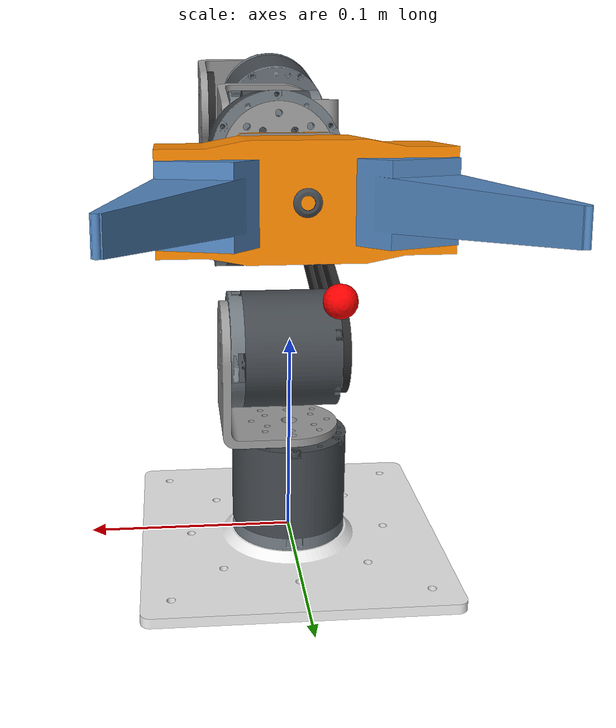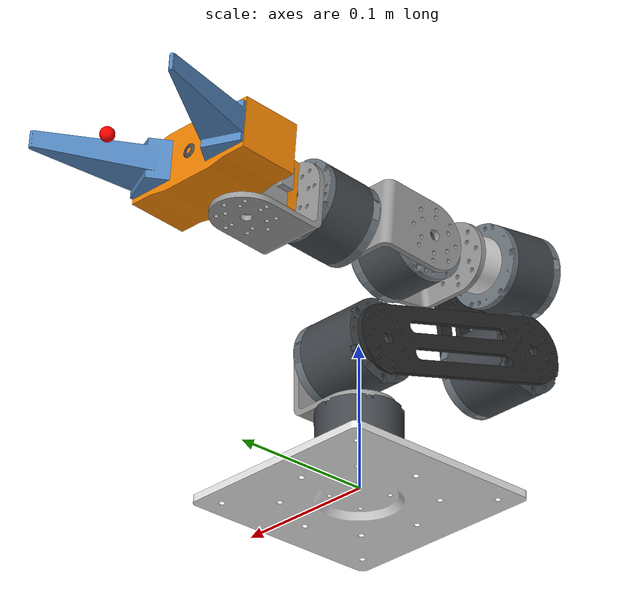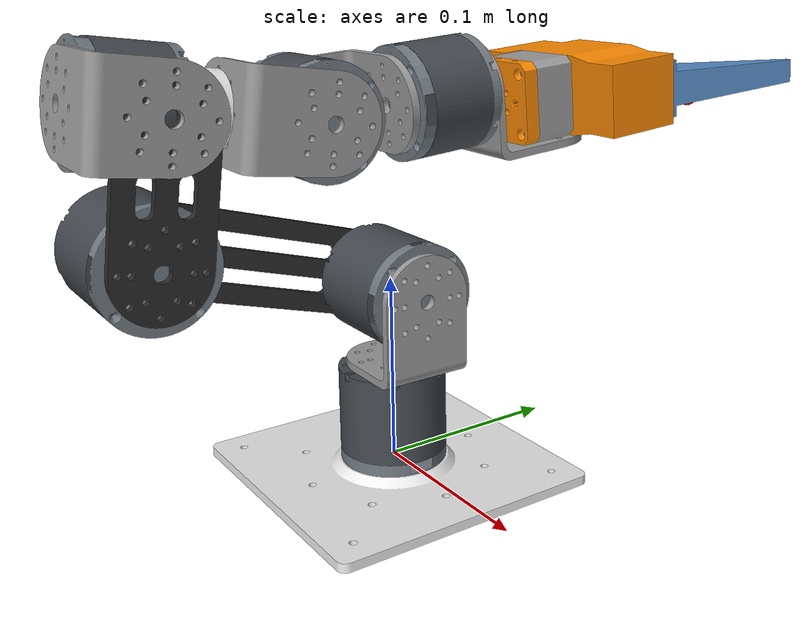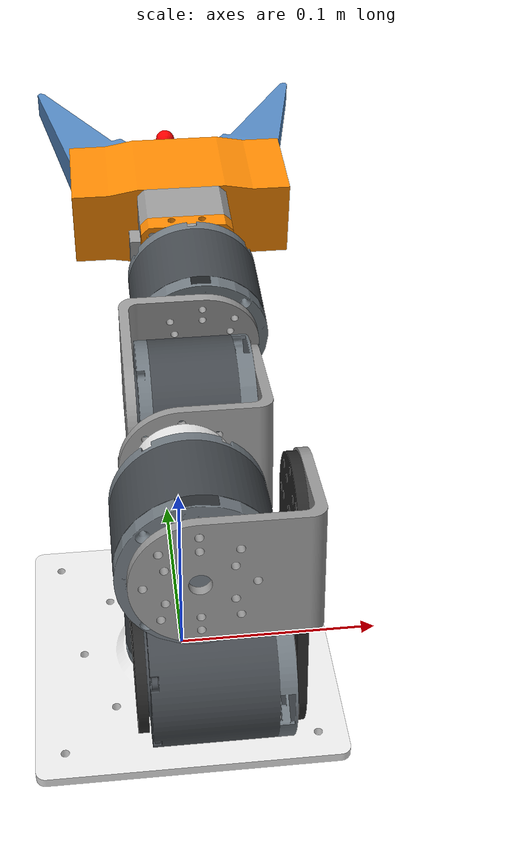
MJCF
<?xml version="1.0" ?>
<!-- Generated using onshape-to-robot -->
<!-- Onshape https://cad.onshape.com/documents/06d928fea4a7cf6e33c0c73c/w/97e1d5e1a60ad8212032749b/e/44e32cf4b7aaa2a49f83f090 -->
<mujoco model="C:\it\PyArmX\xml\gripper">
  <compiler angle="radian" meshdir="assets" autolimits="true"/>
  <default>
    <default class="C:\it\PyArmX\xml\gripper">
    <joint frictionloss="0.2" damping="1.0" armature="0.02"/>
      <position kp="20" dampratio="2"/>
      <default class="visual">
        <geom type="mesh" contype="0" conaffinity="0" group="2"/>
      </default>
      <default class="collision">
        <geom group="3"/>
      </default>
    </default>
  </default>
  <worldbody>
    <body name="target" pos="0 0 0">
      <geom type="sphere" size="0.005" rgba="0 0.8 0 1"/>
    </body>
    <!-- Link broad -->
    <body name="broad" pos="0 0 0" quat="1 0 0 0" childclass="C:\it\PyArmX\xml\gripper">
      <!-- Part dm_4340_motor -->
      <geom type="mesh" class="visual" pos="0 0 0.05325" quat="0.707107 -0.707107 0 0" mesh="dm_4340_motor" material="dm_4340_motor_material"/>
      <geom type="mesh" class="collision" pos="0 0 0.05325" quat="0.707107 -0.707107 0 0" mesh="dm_4340_motor" material="dm_4340_motor_material"/>
      <!-- Part broad -->
      <geom type="mesh" class="visual" pos="-0.0285 -0.0285 -0.004" quat="0.707107 -0 0.707107 -0" mesh="broad" material="broad_material"/>
      <geom type="mesh" class="collision" pos="-0.0285 -0.0285 -0.004" quat="0.707107 -0 0.707107 -0" mesh="broad" material="broad_material"/>
      <!-- Part dm_4340_cover -->
      <geom type="mesh" class="visual" pos="0 0 0.05325" quat="0.707107 -0.707107 0 0" mesh="dm_4340_cover" material="dm_4340_cover_material"/>
      <geom type="mesh" class="collision" pos="0 0 0.05325" quat="0.707107 -0.707107 0 0" mesh="dm_4340_cover" material="dm_4340_cover_material"/>
      <!-- Link l_link -->
      <body name="l_link" pos="-0 -0 0.0533" quat="0 0.707107 -0.707107 -0">
        <!-- Joint from broad to l_link -->
        <joint axis="0 0 1" name="base" type="hinge" range="-3.141592653589793 3.141592653589793"/>
        <!-- Part l_link -->
        <geom type="mesh" class="visual" pos="-0.0285 -0.0305 -0.004" quat="0.5 -0.5 -0.5 -0.5" mesh="l_link" material="l_link_material"/>
        <geom type="mesh" class="collision" pos="-0.0285 -0.0305 -0.004" quat="0.5 -0.5 -0.5 -0.5" mesh="l_link" material="l_link_material"/>
        <!-- Part dm_4340_motor_2 -->
        <geom type="mesh" class="visual" pos="-0 0.02275 -0.0425" quat="0 1 -0 -0" mesh="dm_4340_motor" material="dm_4340_motor_material"/>
        <geom type="mesh" class="collision" pos="-0 0.02275 -0.0425" quat="0 1 -0 -0" mesh="dm_4340_motor" material="dm_4340_motor_material"/>
        <!-- Part dm_4340_cover_2 -->
        <geom type="mesh" class="visual" pos="-0 0.02275 -0.0425" quat="0 1 -0 -0" mesh="dm_4340_cover" material="dm_4340_cover_material"/>
        <geom type="mesh" class="collision" pos="-0 0.02275 -0.0425" quat="0 1 -0 -0" mesh="dm_4340_cover" material="dm_4340_cover_material"/>
        <!-- Link long_link -->
        <body name="long_link" pos="-0 0.0228 -0.0425" quat="0.707107 0.707107 -0 0">
          <!-- Joint from l_link to long_link -->
          <joint axis="0 0 1" name="shoulder" type="hinge" range="-2.8619929615499573 0.2795996920398358"/>
          <!-- Part long_link -->
          <geom type="mesh" class="visual" pos="0.166938 -0.01828 -0" quat="0.139345 0 -0 0.990244" mesh="long_link" material="long_link_material"/>
          <geom type="mesh" class="collision" pos="0.166938 -0.01828 -0" quat="0.139345 0 -0 0.990244" mesh="long_link" material="long_link_material"/>
          <!-- Link dm_4340_motor -->
          <body name="dm_4340_motor" pos="0.13168 -0.037808 -0" quat="0 -0.139345 -0.990244 -0">
            <!-- Joint from long_link to dm_4340_motor -->
            <joint axis="0 0 1" name="elbow" type="hinge" range="-2.9920829066561154 0.1495097469336777"/>
            <!-- Part l_link_2 -->
            <geom type="mesh" class="visual" pos="-0.0440869 -0.0879139 -0.0573" quat="0.705132 0.0528105 0.705132 -0.0528105" mesh="l_link" material="l_link_material"/>
            <geom type="mesh" class="collision" pos="-0.0440869 -0.0879139 -0.0573" quat="0.705132 0.0528105 0.705132 -0.0528105" mesh="l_link" material="l_link_material"/>
            <!-- Part dm_4340_cover_3 -->
            <geom type="mesh" class="visual" pos="-0 0 -5e-05" quat="0.705132 -0.705132 0.0528105 -0.0528105" mesh="dm_4340_cover" material="dm_4340_cover_material"/>
            <geom type="mesh" class="collision" pos="-0 0 -5e-05" quat="0.705132 -0.705132 0.0528105 -0.0528105" mesh="dm_4340_cover" material="dm_4340_cover_material"/>
            <!-- Part short_link -->
            <geom type="mesh" class="visual" pos="0.0142549 -0.0967021 -0.0533" quat="0.757942 0 -0 0.652321" mesh="short_link" material="short_link_material"/>
            <geom type="mesh" class="collision" pos="0.0142549 -0.0967021 -0.0533" quat="0.757942 0 -0 0.652321" mesh="short_link" material="short_link_material"/>
            <!-- Part dm_4310_cover -->
            <geom type="mesh" class="visual" pos="0.00514883 -0.0665215 -0.0189736" quat="0.535946 -0.461261 0.535946 0.461261" mesh="dm_4310_cover" material="dm_4310_cover_material"/>
            <geom type="mesh" class="collision" pos="0.00514883 -0.0665215 -0.0189736" quat="0.535946 -0.461261 0.535946 0.461261" mesh="dm_4310_cover" material="dm_4310_cover_material"/>
            <!-- Part dm_4340_motor_3 -->
            <geom type="mesh" class="visual" pos="-0 0 -5e-05" quat="0.705132 -0.705132 0.0528105 -0.0528105" mesh="dm_4340_motor" material="dm_4340_motor_material"/>
            <geom type="mesh" class="collision" pos="-0 0 -5e-05" quat="0.705132 -0.705132 0.0528105 -0.0528105" mesh="dm_4340_motor" material="dm_4340_motor_material"/>
            <!-- Part dm_4310_adapter -->
            <geom type="mesh" class="visual" pos="0.00514883 -0.0665215 -0.0189736" quat="0.535946 -0.461261 0.535946 0.461261" mesh="dm_4310_adapter" material="dm_4310_adapter_material"/>
            <geom type="mesh" class="collision" pos="0.00514883 -0.0665215 -0.0189736" quat="0.535946 -0.461261 0.535946 0.461261" mesh="dm_4310_adapter" material="dm_4310_adapter_material"/>
            <!-- Part dm_4310_motor -->
            <geom type="mesh" class="visual" pos="0.00514883 -0.0665215 -0.0189736" quat="0.535946 -0.461261 0.535946 0.461261" mesh="dm_4310_motor" material="dm_4310_motor_material"/>
            <geom type="mesh" class="collision" pos="0.00514883 -0.0665215 -0.0189736" quat="0.535946 -0.461261 0.535946 0.461261" mesh="dm_4310_motor" material="dm_4310_motor_material"/>
            <!-- Link l_link_2 -->
            <body name="l_link_2" pos="0.00564326 -0.066596 -0.0189736" quat="0.0528105 -0.705132 0.0528105 0.705132">
              <!-- Joint from dm_4340_motor to l_link_2 -->
              <joint axis="0 0 1" name="wrist_1" type="hinge" range="-3.14159265358957 3.141592653590016"/>
              <!-- Part dm_4310_cover_2 -->
              <geom type="mesh" class="visual" pos="-0.015 -1.24934e-05 -0.0623264" quat="0.5 -0.5 -0.5 -0.5" mesh="dm_4310_cover" material="dm_4310_cover_material"/>
              <geom type="mesh" class="collision" pos="-0.015 -1.24934e-05 -0.0623264" quat="0.5 -0.5 -0.5 -0.5" mesh="dm_4310_cover" material="dm_4310_cover_material"/>
              <!-- Part l_link_3 -->
              <geom type="mesh" class="visual" pos="0.0305 -0.0285 -0.024" quat="0.707107 0 -0.707107 -0" mesh="l_link" material="l_link_material"/>
              <geom type="mesh" class="collision" pos="0.0305 -0.0285 -0.024" quat="0.707107 0 -0.707107 -0" mesh="l_link" material="l_link_material"/>
              <!-- Part dm_4310_adapter_2 -->
              <geom type="mesh" class="visual" pos="-0.015 -1.24934e-05 -0.0623264" quat="0.5 -0.5 -0.5 -0.5" mesh="dm_4310_adapter" material="dm_4310_adapter_material"/>
              <geom type="mesh" class="collision" pos="-0.015 -1.24934e-05 -0.0623264" quat="0.5 -0.5 -0.5 -0.5" mesh="dm_4310_adapter" material="dm_4310_adapter_material"/>
              <!-- Part link_cylinder -->
              <geom type="mesh" class="visual" pos="-0.0285 0.0305 -0" quat="0.5 0.5 0.5 -0.5" mesh="link_cylinder" material="link_cylinder_material"/>
              <geom type="mesh" class="collision" pos="-0.0285 0.0305 -0" quat="0.5 0.5 0.5 -0.5" mesh="link_cylinder" material="link_cylinder_material"/>
              <!-- Part dm_4310_motor_2 -->
              <geom type="mesh" class="visual" pos="-0.015 -1.24934e-05 -0.0623264" quat="0.5 -0.5 -0.5 -0.5" mesh="dm_4310_motor" material="dm_4310_motor_material"/>
              <geom type="mesh" class="collision" pos="-0.015 -1.24934e-05 -0.0623264" quat="0.5 -0.5 -0.5 -0.5" mesh="dm_4310_motor" material="dm_4310_motor_material"/>
              <!-- Link l_link_3 -->
              <body name="l_link_3" pos="-0.0155 -1.24934e-05 -0.0623264" quat="0.702983 0.076259 0.702983 0.076259">
                <!-- Joint from l_link_2 to l_link_3 -->
                <joint axis="0 0 1" name="wrist_2" type="hinge" range="-1.9614427264060919 1.5292157775825672"/>
                <!-- Part l_link_4 -->
                <geom type="mesh" class="visual" pos="0.0385 -0.0285 0" quat="1 0 -0 0" mesh="l_link" material="l_link_material"/>
                <geom type="mesh" class="collision" pos="0.0385 -0.0285 0" quat="1 0 -0 0" mesh="l_link" material="l_link_material"/>
                <!-- Part dm_4310_motor_3 -->
                <geom type="mesh" class="visual" pos="0.088 -0.000173555 0.0305125" quat="0 0.707107 -0.707107 -0" mesh="dm_4310_motor" material="dm_4310_motor_material"/>
                <geom type="mesh" class="collision" pos="0.088 -0.000173555 0.0305125" quat="0 0.707107 -0.707107 -0" mesh="dm_4310_motor" material="dm_4310_motor_material"/>
                <!-- Part dm_4310_adapter_3 -->
                <geom type="mesh" class="visual" pos="0.088 -0.000173555 0.0305125" quat="0 0.707107 -0.707107 -0" mesh="dm_4310_adapter" material="dm_4310_adapter_material"/>
                <geom type="mesh" class="collision" pos="0.088 -0.000173555 0.0305125" quat="0 0.707107 -0.707107 -0" mesh="dm_4310_adapter" material="dm_4310_adapter_material"/>
                <!-- Part dm_4310_cover_3 -->
                <geom type="mesh" class="visual" pos="0.088 -0.000173555 0.0305125" quat="0 0.707107 -0.707107 -0" mesh="dm_4310_cover" material="dm_4310_cover_material"/>
                <geom type="mesh" class="collision" pos="0.088 -0.000173555 0.0305125" quat="0 0.707107 -0.707107 -0" mesh="dm_4310_cover" material="dm_4310_cover_material"/>
                <!-- Link l_link_4 -->
                <body name="l_link_4" pos="0.0885 -0.000173555 0.0305125" quat="0.707107 -0 -0.707107 0">
                  <site name="ee" pos="0 -0.03 -0.16" size="0.005" rgba="1 0 0 1"/>
                  <!-- Joint from l_link_3 to l_link_4 -->
                  <joint axis="0 0 1" name="wrist_3" type="hinge" range="-3.1415926535897443 3.141592653589842"/>
                  <!-- Part base_adapter -->
                  <geom type="mesh" class="visual" pos="-0.0616575 -0.0095 -0.0470428" quat="0 0 -0.707107 0.707107" mesh="base_adapter" material="base_adapter_material"/>
                  <geom type="mesh" class="collision" pos="-0.0616575 -0.0095 -0.0470428" quat="0 0 -0.707107 0.707107" mesh="base_adapter" material="base_adapter_material"/>
                  <!-- Part finger_left -->
                  <geom type="mesh" class="visual" pos="-0.0616575 -0.0095 -0.0470428" quat="0 0 -0.707107 0.707107" mesh="finger_left" material="finger_left_material"/>
                  <geom type="mesh" class="collision" pos="-0.0616575 -0.0095 -0.0470428" quat="0 0 -0.707107 0.707107" mesh="finger_left" material="finger_left_material"/>
                  <!-- Part screw_2 -->
                  <geom type="mesh" class="visual" pos="-0.0616575 -0.0095 -0.0470428" quat="0 0 -0.707107 0.707107" mesh="screw_2" material="screw_2_material"/>
                  <geom type="mesh" class="collision" pos="-0.0616575 -0.0095 -0.0470428" quat="0 0 -0.707107 0.707107" mesh="screw_2" material="screw_2_material"/>
                  <!-- Part screw_1 -->
                  <geom type="mesh" class="visual" pos="-0.0616575 -0.0095 -0.0470428" quat="0 0 -0.707107 0.707107" mesh="screw_1" material="screw_1_material"/>
                  <geom type="mesh" class="collision" pos="-0.0616575 -0.0095 -0.0470428" quat="0 0 -0.707107 0.707107" mesh="screw_1" material="screw_1_material"/>
                  <!-- Part finger_right -->
                  <geom type="mesh" class="visual" pos="-0.0616575 -0.0095 -0.0470428" quat="0 0 -0.707107 0.707107" mesh="finger_right" material="finger_right_material"/>
                  <geom type="mesh" class="collision" pos="-0.0616575 -0.0095 -0.0470428" quat="0 0 -0.707107 0.707107" mesh="finger_right" material="finger_right_material"/>
                  <!-- Part stepper -->
                  <geom type="mesh" class="visual" pos="-0.0616575 -0.0095 -0.0470428" quat="0 0 -0.707107 0.707107" mesh="stepper" material="stepper_material"/>
                  <geom type="mesh" class="collision" pos="-0.0616575 -0.0095 -0.0470428" quat="0 0 -0.707107 0.707107" mesh="stepper" material="stepper_material"/>
                  <!-- Part box -->
                  <geom type="mesh" class="visual" pos="-0.0616575 -0.0095 -0.0470428" quat="0 0 -0.707107 0.707107" mesh="box" material="box_material"/>
                  <geom type="mesh" class="collision" pos="-0.0616575 -0.0095 -0.0470428" quat="0 0 -0.707107 0.707107" mesh="box" material="box_material"/>
                  <!-- Part screw_0 -->
                  <geom type="mesh" class="visual" pos="-0.0616575 -0.0095 -0.0470428" quat="0 0 -0.707107 0.707107" mesh="screw_0" material="screw_0_material"/>
                  <geom type="mesh" class="collision" pos="-0.0616575 -0.0095 -0.0470428" quat="0 0 -0.707107 0.707107" mesh="screw_0" material="screw_0_material"/>
                  <!-- Part l_link_5 -->
                  <geom type="mesh" class="visual" pos="-0.0285 -0.0305 -0.004" quat="0.5 -0.5 -0.5 -0.5" mesh="l_link" material="l_link_material"/>
                  <geom type="mesh" class="collision" pos="-0.0285 -0.0305 -0.004" quat="0.5 -0.5 -0.5 -0.5" mesh="l_link" material="l_link_material"/>
                </body>
              </body>
            </body>
          </body>
        </body>
      </body>
    </body>
  </worldbody>
  <asset>
    <mesh file="link_cylinder.stl"/>
    <mesh file="short_link.stl"/>
    <mesh file="dm_4310_adapter.stl"/>
    <mesh file="screw_2.stl"/>
    <mesh file="dm_4340_motor.stl"/>
    <mesh file="l_link.stl"/>
    <mesh file="dm_4310_motor.stl"/>
    <mesh file="finger_right.stl"/>
    <mesh file="dm_4340_cover.stl"/>
    <mesh file="screw_0.stl"/>
    <mesh file="dm_4310_cover.stl"/>
    <mesh file="screw_1.stl"/>
    <mesh file="stepper.stl"/>
    <mesh file="base_adapter.stl"/>
    <mesh file="broad.stl"/>
    <mesh file="finger_left.stl"/>
    <mesh file="box.stl"/>
    <mesh file="long_link.stl"/>
    <material name="dm_4340_motor_material" rgba="0.262745 0.282353 0.301961 1"/>
    <material name="broad_material" rgba="0.917647 0.917647 0.917647 1"/>
    <material name="dm_4340_cover_material" rgba="0.439216 0.47451 0.501961 1"/>
    <material name="l_link_material" rgba="0.6 0.6 0.6 1"/>
    <material name="long_link_material" rgba="0.156863 0.156863 0.156863 1"/>
    <material name="short_link_material" rgba="0.156863 0.156863 0.156863 1"/>
    <material name="dm_4310_cover_material" rgba="0.439216 0.47451 0.501961 1"/>
    <material name="dm_4310_adapter_material" rgba="0.439216 0.47451 0.501961 1"/>
    <material name="dm_4310_motor_material" rgba="0.262745 0.282353 0.301961 1"/>
    <material name="link_cylinder_material" rgba="0.917647 0.917647 0.917647 1"/>
    <material name="base_adapter_material" rgba="0.972549 0.529412 0.00392157 1"/>
    <material name="finger_left_material" rgba="0.32549 0.529412 0.752941 1"/>
    <material name="screw_2_material" rgba="0.262745 0.282353 0.301961 1"/>
    <material name="screw_1_material" rgba="0.262745 0.282353 0.301961 1"/>
    <material name="finger_right_material" rgba="0.32549 0.529412 0.752941 1"/>
    <material name="stepper_material" rgba="0.6 0.6 0.6 1"/>
    <material name="box_material" rgba="0.972549 0.529412 0.00392157 1"/>
    <material name="screw_0_material" rgba="0.262745 0.282353 0.301961 1"/>
  </asset>
  <actuator>
    <position class="C:\it\PyArmX\xml\gripper" name="base" joint="base" inheritrange="1"/>
    <position class="C:\it\PyArmX\xml\gripper" name="shoulder" joint="shoulder" inheritrange="1"/>
    <position class="C:\it\PyArmX\xml\gripper" name="elbow" joint="elbow" inheritrange="1"/>
    <position class="C:\it\PyArmX\xml\gripper" name="wrist_1" joint="wrist_1" inheritrange="1"/>
    <position class="C:\it\PyArmX\xml\gripper" name="wrist_2" joint="wrist_2" inheritrange="1"/>
    <position class="C:\it\PyArmX\xml\gripper" name="wrist_3" joint="wrist_3" inheritrange="1"/>
  </actuator>
  <equality/>
</mujoco>
